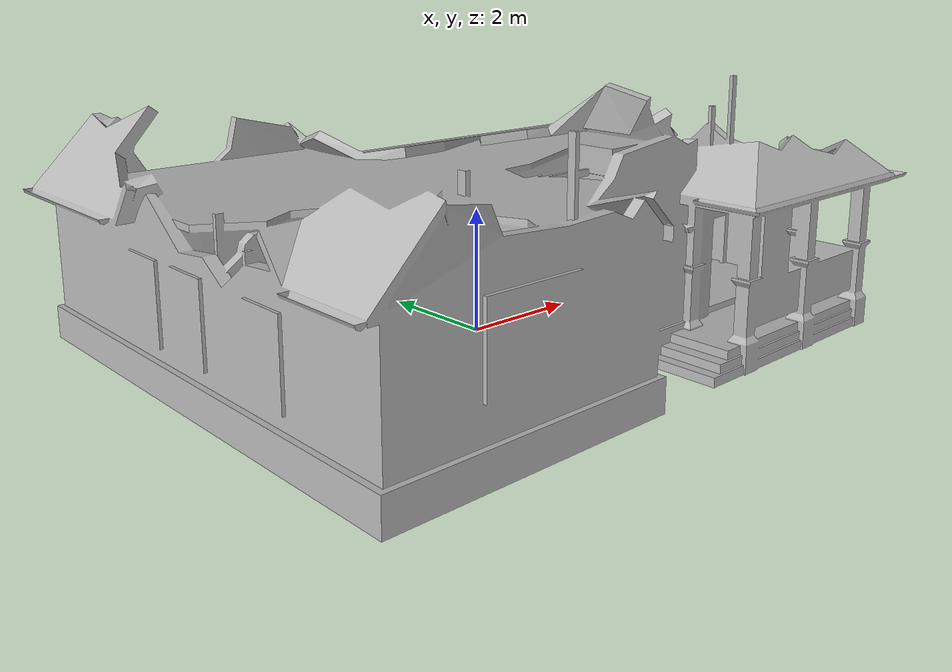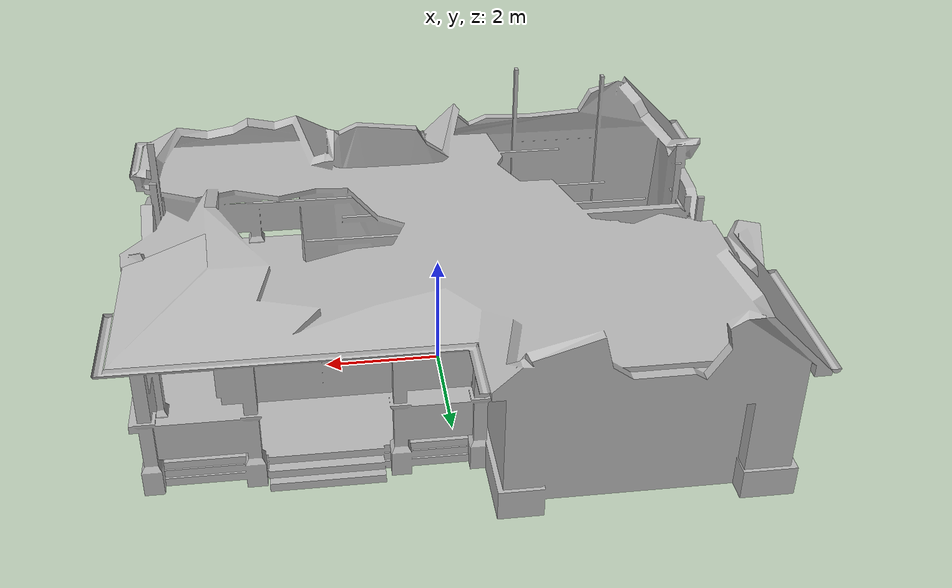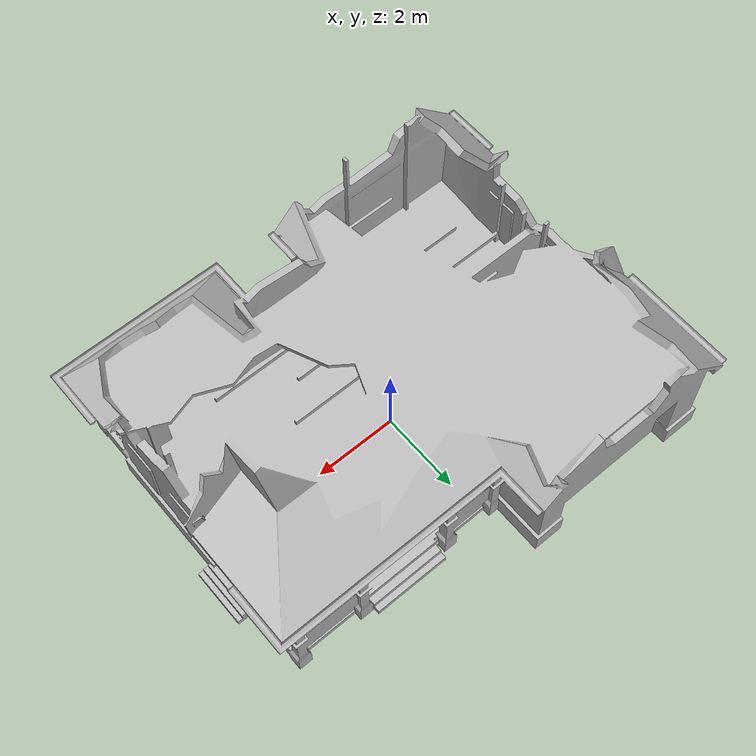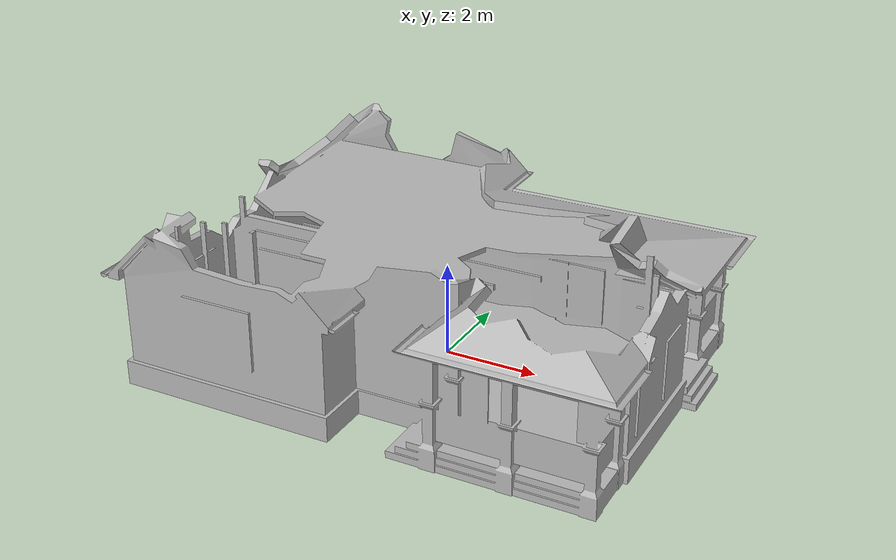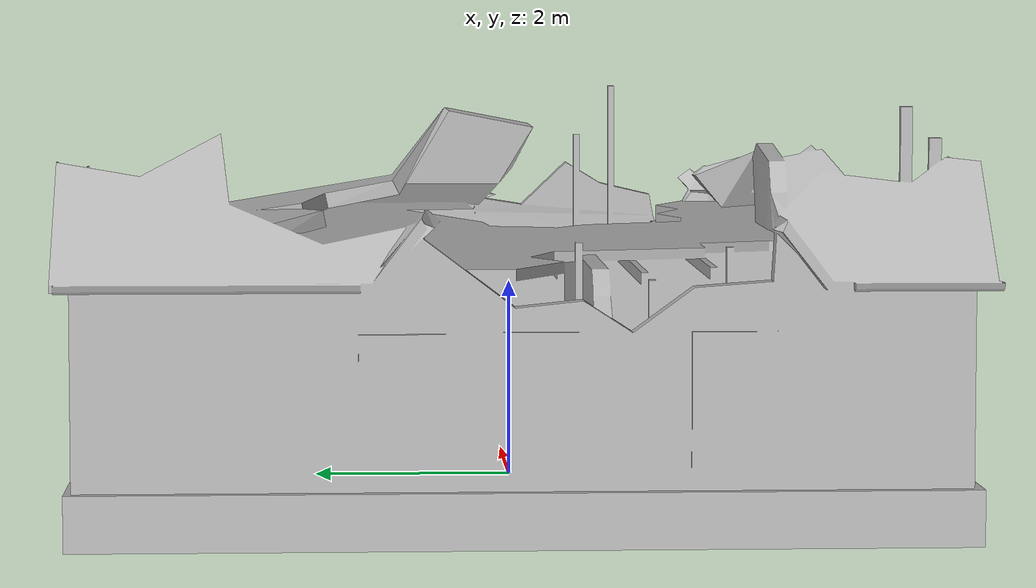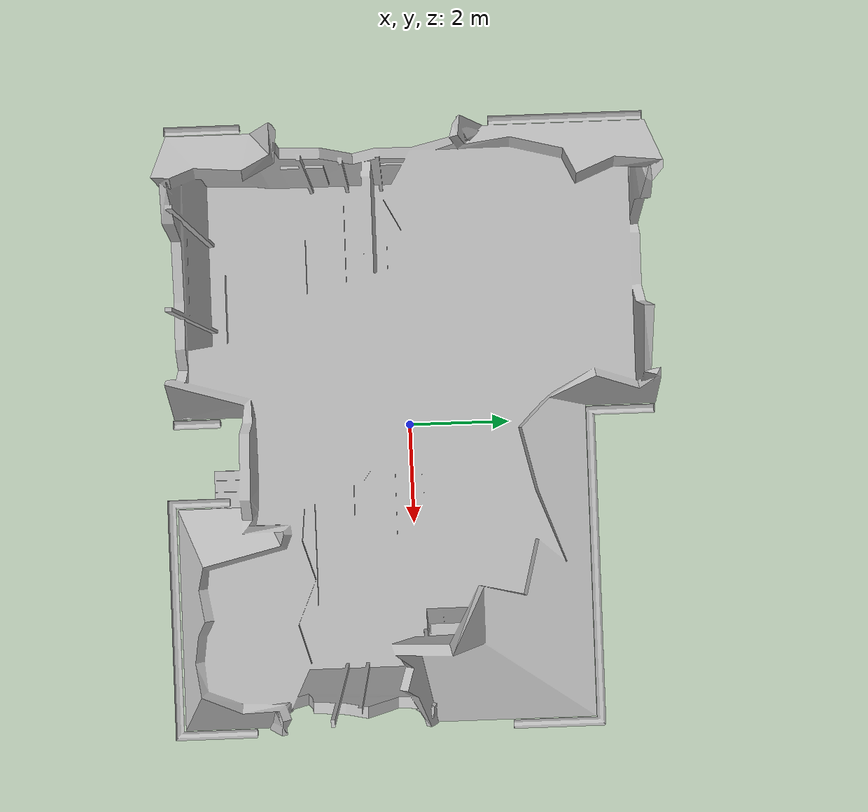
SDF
<?xml version="1.0" ?>
<sdf version="1.5">
  <model name="collapsed_house">
    <static>true</static>
    <link name="link">
      <collision name="collision">
        <geometry>
          <mesh>
            <scale>1.0 1.0 1.0</scale>
            <uri>model://collapsed_house/meshes/collapsed_house.dae</uri>
          </mesh>
        </geometry>
      </collision>
      <visual name="visual">
        <geometry>
          <mesh>
            <scale>1.0 1.0 1.0</scale>
            <uri>model://collapsed_house/meshes/collapsed_house.dae</uri>
          </mesh>
        </geometry>
      </visual>
    </link>
  </model>
</sdf>
